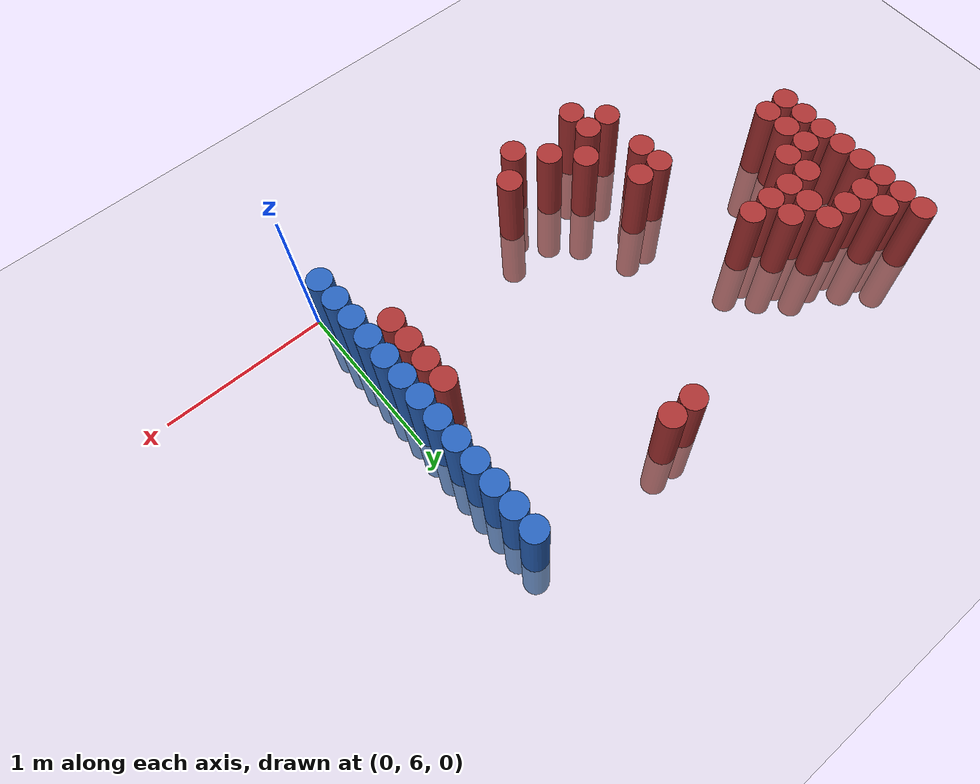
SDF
<sdf version="1.6">
 <world name="default">
  <model name="ground_plane">
   <static>1</static>
   <link name="link">
    <collision name="collision">
     <geometry><plane><normal>0 0 1</normal><size>100 100</size></plane></geometry>
     <surface><friction><ode><mu>100</mu><mu2>50</mu2></ode></friction></surface>
    </collision>
    <visual name="visual">
     <cast_shadows>0</cast_shadows>
     <geometry><plane><normal>0 0 1</normal><size>100 100</size></plane></geometry>
     <material>
      <script><uri>file://media/materials/scripts/gazebo.material</uri><name>Gazebo/Grey</name></script>
     </material>
    </visual>
   </link>
  </model>
  <model name="unit_cylinder_236">
   <static>1</static>
   <pose>-2.925000 6.825000 0.000000 0.000000 0.000000 0.000000</pose>
   <link name="link">
    <inertial>
     <mass>1</mass>
     <inertia><ixx>0.145833</ixx><ixy>0</ixy><ixz>0</ixz><iyy>0.145833</iyy><iyz>0</iyz><izz>0.125</izz></inertia>
    </inertial>
    <collision name="collision">
     <geometry><cylinder><radius>0.075000</radius><length>1</length></cylinder></geometry>
    </collision>
    <visual name="visual">
     <geometry><cylinder><radius>0.075000</radius><length>1</length></cylinder></geometry>
     <material>
      <ambient>0.648000 0.192000 0.192000 1</ambient>
      <diffuse>0.648000 0.192000 0.192000 1</diffuse>
     </material>
     <material>
      <script><name>Gazebo/Grey</name><uri>file://media/materials/scripts/gazebo.material</uri></script>
     </material>
    </visual>
   </link>
  </model>
  <model name="unit_cylinder_237">
   <static>1</static>
   <pose>-2.925000 6.975000 0.000000 0.000000 0.000000 0.000000</pose>
   <link name="link">
    <inertial>
     <mass>1</mass>
     <inertia><ixx>0.145833</ixx><ixy>0</ixy><ixz>0</ixz><iyy>0.145833</iyy><iyz>0</iyz><izz>0.125</izz></inertia>
    </inertial>
    <collision name="collision">
     <geometry><cylinder><radius>0.075000</radius><length>1</length></cylinder></geometry>
    </collision>
    <visual name="visual">
     <geometry><cylinder><radius>0.075000</radius><length>1</length></cylinder></geometry>
     <material>
      <ambient>0.648000 0.192000 0.192000 1</ambient>
      <diffuse>0.648000 0.192000 0.192000 1</diffuse>
     </material>
     <material>
      <script><name>Gazebo/Grey</name><uri>file://media/materials/scripts/gazebo.material</uri></script>
     </material>
    </visual>
   </link>
  </model>
  <model name="unit_cylinder_238">
   <static>1</static>
   <pose>-2.925000 7.125000 0.000000 0.000000 0.000000 0.000000</pose>
   <link name="link">
    <inertial>
     <mass>1</mass>
     <inertia><ixx>0.145833</ixx><ixy>0</ixy><ixz>0</ixz><iyy>0.145833</iyy><iyz>0</iyz><izz>0.125</izz></inertia>
    </inertial>
    <collision name="collision">
     <geometry><cylinder><radius>0.075000</radius><length>1</length></cylinder></geometry>
    </collision>
    <visual name="visual">
     <geometry><cylinder><radius>0.075000</radius><length>1</length></cylinder></geometry>
     <material>
      <ambient>0.648000 0.192000 0.192000 1</ambient>
      <diffuse>0.648000 0.192000 0.192000 1</diffuse>
     </material>
     <material>
      <script><name>Gazebo/Grey</name><uri>file://media/materials/scripts/gazebo.material</uri></script>
     </material>
    </visual>
   </link>
  </model>
  <model name="unit_cylinder_239">
   <static>1</static>
   <pose>-2.925000 7.275000 0.000000 0.000000 0.000000 0.000000</pose>
   <link name="link">
    <inertial>
     <mass>1</mass>
     <inertia><ixx>0.145833</ixx><ixy>0</ixy><ixz>0</ixz><iyy>0.145833</iyy><iyz>0</iyz><izz>0.125</izz></inertia>
    </inertial>
    <collision name="collision">
     <geometry><cylinder><radius>0.075000</radius><length>1</length></cylinder></geometry>
    </collision>
    <visual name="visual">
     <geometry><cylinder><radius>0.075000</radius><length>1</length></cylinder></geometry>
     <material>
      <ambient>0.648000 0.192000 0.192000 1</ambient>
      <diffuse>0.648000 0.192000 0.192000 1</diffuse>
     </material>
     <material>
      <script><name>Gazebo/Grey</name><uri>file://media/materials/scripts/gazebo.material</uri></script>
     </material>
    </visual>
   </link>
  </model>
  <model name="unit_cylinder_240">
   <static>1</static>
   <pose>-2.925000 7.425000 0.000000 0.000000 0.000000 0.000000</pose>
   <link name="link">
    <inertial>
     <mass>1</mass>
     <inertia><ixx>0.145833</ixx><ixy>0</ixy><ixz>0</ixz><iyy>0.145833</iyy><iyz>0</iyz><izz>0.125</izz></inertia>
    </inertial>
    <collision name="collision">
     <geometry><cylinder><radius>0.075000</radius><length>1</length></cylinder></geometry>
    </collision>
    <visual name="visual">
     <geometry><cylinder><radius>0.075000</radius><length>1</length></cylinder></geometry>
     <material>
      <ambient>0.648000 0.192000 0.192000 1</ambient>
      <diffuse>0.648000 0.192000 0.192000 1</diffuse>
     </material>
     <material>
      <script><name>Gazebo/Grey</name><uri>file://media/materials/scripts/gazebo.material</uri></script>
     </material>
    </visual>
   </link>
  </model>
  <model name="unit_cylinder_241">
   <static>1</static>
   <pose>-2.925000 7.575000 0.000000 0.000000 0.000000 0.000000</pose>
   <link name="link">
    <inertial>
     <mass>1</mass>
     <inertia><ixx>0.145833</ixx><ixy>0</ixy><ixz>0</ixz><iyy>0.145833</iyy><iyz>0</iyz><izz>0.125</izz></inertia>
    </inertial>
    <collision name="collision">
     <geometry><cylinder><radius>0.075000</radius><length>1</length></cylinder></geometry>
    </collision>
    <visual name="visual">
     <geometry><cylinder><radius>0.075000</radius><length>1</length></cylinder></geometry>
     <material>
      <ambient>0.648000 0.192000 0.192000 1</ambient>
      <diffuse>0.648000 0.192000 0.192000 1</diffuse>
     </material>
     <material>
      <script><name>Gazebo/Grey</name><uri>file://media/materials/scripts/gazebo.material</uri></script>
     </material>
    </visual>
   </link>
  </model>
  <model name="unit_cylinder_242">
   <static>1</static>
   <pose>-2.925000 7.725000 0.000000 0.000000 0.000000 0.000000</pose>
   <link name="link">
    <inertial>
     <mass>1</mass>
     <inertia><ixx>0.145833</ixx><ixy>0</ixy><ixz>0</ixz><iyy>0.145833</iyy><iyz>0</iyz><izz>0.125</izz></inertia>
    </inertial>
    <collision name="collision">
     <geometry><cylinder><radius>0.075000</radius><length>1</length></cylinder></geometry>
    </collision>
    <visual name="visual">
     <geometry><cylinder><radius>0.075000</radius><length>1</length></cylinder></geometry>
     <material>
      <ambient>0.648000 0.192000 0.192000 1</ambient>
      <diffuse>0.648000 0.192000 0.192000 1</diffuse>
     </material>
     <material>
      <script><name>Gazebo/Grey</name><uri>file://media/materials/scripts/gazebo.material</uri></script>
     </material>
    </visual>
   </link>
  </model>
  <model name="unit_cylinder_243">
   <static>1</static>
   <pose>-2.925000 7.875000 0.000000 0.000000 0.000000 0.000000</pose>
   <link name="link">
    <inertial>
     <mass>1</mass>
     <inertia><ixx>0.145833</ixx><ixy>0</ixy><ixz>0</ixz><iyy>0.145833</iyy><iyz>0</iyz><izz>0.125</izz></inertia>
    </inertial>
    <collision name="collision">
     <geometry><cylinder><radius>0.075000</radius><length>1</length></cylinder></geometry>
    </collision>
    <visual name="visual">
     <geometry><cylinder><radius>0.075000</radius><length>1</length></cylinder></geometry>
     <material>
      <ambient>0.648000 0.192000 0.192000 1</ambient>
      <diffuse>0.648000 0.192000 0.192000 1</diffuse>
     </material>
     <material>
      <script><name>Gazebo/Grey</name><uri>file://media/materials/scripts/gazebo.material</uri></script>
     </material>
    </visual>
   </link>
  </model>
  <model name="unit_cylinder_249">
   <static>1</static>
   <pose>-2.775000 6.825000 0.000000 0.000000 0.000000 0.000000</pose>
   <link name="link">
    <inertial>
     <mass>1</mass>
     <inertia><ixx>0.145833</ixx><ixy>0</ixy><ixz>0</ixz><iyy>0.145833</iyy><iyz>0</iyz><izz>0.125</izz></inertia>
    </inertial>
    <collision name="collision">
     <geometry><cylinder><radius>0.075000</radius><length>1</length></cylinder></geometry>
    </collision>
    <visual name="visual">
     <geometry><cylinder><radius>0.075000</radius><length>1</length></cylinder></geometry>
     <material>
      <ambient>0.648000 0.192000 0.192000 1</ambient>
      <diffuse>0.648000 0.192000 0.192000 1</diffuse>
     </material>
     <material>
      <script><name>Gazebo/Grey</name><uri>file://media/materials/scripts/gazebo.material</uri></script>
     </material>
    </visual>
   </link>
  </model>
  <model name="unit_cylinder_250">
   <static>1</static>
   <pose>-2.775000 6.975000 0.000000 0.000000 0.000000 0.000000</pose>
   <link name="link">
    <inertial>
     <mass>1</mass>
     <inertia><ixx>0.145833</ixx><ixy>0</ixy><ixz>0</ixz><iyy>0.145833</iyy><iyz>0</iyz><izz>0.125</izz></inertia>
    </inertial>
    <collision name="collision">
     <geometry><cylinder><radius>0.075000</radius><length>1</length></cylinder></geometry>
    </collision>
    <visual name="visual">
     <geometry><cylinder><radius>0.075000</radius><length>1</length></cylinder></geometry>
     <material>
      <ambient>0.648000 0.192000 0.192000 1</ambient>
      <diffuse>0.648000 0.192000 0.192000 1</diffuse>
     </material>
     <material>
      <script><name>Gazebo/Grey</name><uri>file://media/materials/scripts/gazebo.material</uri></script>
     </material>
    </visual>
   </link>
  </model>
  <model name="unit_cylinder_251">
   <static>1</static>
   <pose>-2.775000 7.125000 0.000000 0.000000 0.000000 0.000000</pose>
   <link name="link">
    <inertial>
     <mass>1</mass>
     <inertia><ixx>0.145833</ixx><ixy>0</ixy><ixz>0</ixz><iyy>0.145833</iyy><iyz>0</iyz><izz>0.125</izz></inertia>
    </inertial>
    <collision name="collision">
     <geometry><cylinder><radius>0.075000</radius><length>1</length></cylinder></geometry>
    </collision>
    <visual name="visual">
     <geometry><cylinder><radius>0.075000</radius><length>1</length></cylinder></geometry>
     <material>
      <ambient>0.648000 0.192000 0.192000 1</ambient>
      <diffuse>0.648000 0.192000 0.192000 1</diffuse>
     </material>
     <material>
      <script><name>Gazebo/Grey</name><uri>file://media/materials/scripts/gazebo.material</uri></script>
     </material>
    </visual>
   </link>
  </model>
  <model name="unit_cylinder_252">
   <static>1</static>
   <pose>-2.775000 7.575000 0.000000 0.000000 0.000000 0.000000</pose>
   <link name="link">
    <inertial>
     <mass>1</mass>
     <inertia><ixx>0.145833</ixx><ixy>0</ixy><ixz>0</ixz><iyy>0.145833</iyy><iyz>0</iyz><izz>0.125</izz></inertia>
    </inertial>
    <collision name="collision">
     <geometry><cylinder><radius>0.075000</radius><length>1</length></cylinder></geometry>
    </collision>
    <visual name="visual">
     <geometry><cylinder><radius>0.075000</radius><length>1</length></cylinder></geometry>
     <material>
      <ambient>0.648000 0.192000 0.192000 1</ambient>
      <diffuse>0.648000 0.192000 0.192000 1</diffuse>
     </material>
     <material>
      <script><name>Gazebo/Grey</name><uri>file://media/materials/scripts/gazebo.material</uri></script>
     </material>
    </visual>
   </link>
  </model>
  <model name="unit_cylinder_253">
   <static>1</static>
   <pose>-2.775000 7.725000 0.000000 0.000000 0.000000 0.000000</pose>
   <link name="link">
    <inertial>
     <mass>1</mass>
     <inertia><ixx>0.145833</ixx><ixy>0</ixy><ixz>0</ixz><iyy>0.145833</iyy><iyz>0</iyz><izz>0.125</izz></inertia>
    </inertial>
    <collision name="collision">
     <geometry><cylinder><radius>0.075000</radius><length>1</length></cylinder></geometry>
    </collision>
    <visual name="visual">
     <geometry><cylinder><radius>0.075000</radius><length>1</length></cylinder></geometry>
     <material>
      <ambient>0.648000 0.192000 0.192000 1</ambient>
      <diffuse>0.648000 0.192000 0.192000 1</diffuse>
     </material>
     <material>
      <script><name>Gazebo/Grey</name><uri>file://media/materials/scripts/gazebo.material</uri></script>
     </material>
    </visual>
   </link>
  </model>
  <model name="unit_cylinder_257">
   <static>1</static>
   <pose>-2.625000 7.125000 0.000000 0.000000 0.000000 0.000000</pose>
   <link name="link">
    <inertial>
     <mass>1</mass>
     <inertia><ixx>0.145833</ixx><ixy>0</ixy><ixz>0</ixz><iyy>0.145833</iyy><iyz>0</iyz><izz>0.125</izz></inertia>
    </inertial>
    <collision name="collision">
     <geometry><cylinder><radius>0.075000</radius><length>1</length></cylinder></geometry>
    </collision>
    <visual name="visual">
     <geometry><cylinder><radius>0.075000</radius><length>1</length></cylinder></geometry>
     <material>
      <ambient>0.648000 0.192000 0.192000 1</ambient>
      <diffuse>0.648000 0.192000 0.192000 1</diffuse>
     </material>
     <material>
      <script><name>Gazebo/Grey</name><uri>file://media/materials/scripts/gazebo.material</uri></script>
     </material>
    </visual>
   </link>
  </model>
  <model name="unit_cylinder_258">
   <static>1</static>
   <pose>-2.625000 7.275000 0.000000 0.000000 0.000000 0.000000</pose>
   <link name="link">
    <inertial>
     <mass>1</mass>
     <inertia><ixx>0.145833</ixx><ixy>0</ixy><ixz>0</ixz><iyy>0.145833</iyy><iyz>0</iyz><izz>0.125</izz></inertia>
    </inertial>
    <collision name="collision">
     <geometry><cylinder><radius>0.075000</radius><length>1</length></cylinder></geometry>
    </collision>
    <visual name="visual">
     <geometry><cylinder><radius>0.075000</radius><length>1</length></cylinder></geometry>
     <material>
      <ambient>0.648000 0.192000 0.192000 1</ambient>
      <diffuse>0.648000 0.192000 0.192000 1</diffuse>
     </material>
     <material>
      <script><name>Gazebo/Grey</name><uri>file://media/materials/scripts/gazebo.material</uri></script>
     </material>
    </visual>
   </link>
  </model>
  <model name="unit_cylinder_259">
   <static>1</static>
   <pose>-2.625000 7.575000 0.000000 0.000000 0.000000 0.000000</pose>
   <link name="link">
    <inertial>
     <mass>1</mass>
     <inertia><ixx>0.145833</ixx><ixy>0</ixy><ixz>0</ixz><iyy>0.145833</iyy><iyz>0</iyz><izz>0.125</izz></inertia>
    </inertial>
    <collision name="collision">
     <geometry><cylinder><radius>0.075000</radius><length>1</length></cylinder></geometry>
    </collision>
    <visual name="visual">
     <geometry><cylinder><radius>0.075000</radius><length>1</length></cylinder></geometry>
     <material>
      <ambient>0.648000 0.192000 0.192000 1</ambient>
      <diffuse>0.648000 0.192000 0.192000 1</diffuse>
     </material>
     <material>
      <script><name>Gazebo/Grey</name><uri>file://media/materials/scripts/gazebo.material</uri></script>
     </material>
    </visual>
   </link>
  </model>
  <model name="unit_cylinder_263">
   <static>1</static>
   <pose>-2.475000 7.275000 0.000000 0.000000 0.000000 0.000000</pose>
   <link name="link">
    <inertial>
     <mass>1</mass>
     <inertia><ixx>0.145833</ixx><ixy>0</ixy><ixz>0</ixz><iyy>0.145833</iyy><iyz>0</iyz><izz>0.125</izz></inertia>
    </inertial>
    <collision name="collision">
     <geometry><cylinder><radius>0.075000</radius><length>1</length></cylinder></geometry>
    </collision>
    <visual name="visual">
     <geometry><cylinder><radius>0.075000</radius><length>1</length></cylinder></geometry>
     <material>
      <ambient>0.648000 0.192000 0.192000 1</ambient>
      <diffuse>0.648000 0.192000 0.192000 1</diffuse>
     </material>
     <material>
      <script><name>Gazebo/Grey</name><uri>file://media/materials/scripts/gazebo.material</uri></script>
     </material>
    </visual>
   </link>
  </model>
  <model name="unit_cylinder_264">
   <static>1</static>
   <pose>-2.475000 7.425000 0.000000 0.000000 0.000000 0.000000</pose>
   <link name="link">
    <inertial>
     <mass>1</mass>
     <inertia><ixx>0.145833</ixx><ixy>0</ixy><ixz>0</ixz><iyy>0.145833</iyy><iyz>0</iyz><izz>0.125</izz></inertia>
    </inertial>
    <collision name="collision">
     <geometry><cylinder><radius>0.075000</radius><length>1</length></cylinder></geometry>
    </collision>
    <visual name="visual">
     <geometry><cylinder><radius>0.075000</radius><length>1</length></cylinder></geometry>
     <material>
      <ambient>0.648000 0.192000 0.192000 1</ambient>
      <diffuse>0.648000 0.192000 0.192000 1</diffuse>
     </material>
     <material>
      <script><name>Gazebo/Grey</name><uri>file://media/materials/scripts/gazebo.material</uri></script>
     </material>
    </visual>
   </link>
  </model>
  <model name="unit_cylinder_265">
   <static>1</static>
   <pose>-2.475000 7.575000 0.000000 0.000000 0.000000 0.000000</pose>
   <link name="link">
    <inertial>
     <mass>1</mass>
     <inertia><ixx>0.145833</ixx><ixy>0</ixy><ixz>0</ixz><iyy>0.145833</iyy><iyz>0</iyz><izz>0.125</izz></inertia>
    </inertial>
    <collision name="collision">
     <geometry><cylinder><radius>0.075000</radius><length>1</length></cylinder></geometry>
    </collision>
    <visual name="visual">
     <geometry><cylinder><radius>0.075000</radius><length>1</length></cylinder></geometry>
     <material>
      <ambient>0.648000 0.192000 0.192000 1</ambient>
      <diffuse>0.648000 0.192000 0.192000 1</diffuse>
     </material>
     <material>
      <script><name>Gazebo/Grey</name><uri>file://media/materials/scripts/gazebo.material</uri></script>
     </material>
    </visual>
   </link>
  </model>
  <model name="unit_cylinder_268">
   <static>1</static>
   <pose>-2.325000 7.275000 0.000000 0.000000 0.000000 0.000000</pose>
   <link name="link">
    <inertial>
     <mass>1</mass>
     <inertia><ixx>0.145833</ixx><ixy>0</ixy><ixz>0</ixz><iyy>0.145833</iyy><iyz>0</iyz><izz>0.125</izz></inertia>
    </inertial>
    <collision name="collision">
     <geometry><cylinder><radius>0.075000</radius><length>1</length></cylinder></geometry>
    </collision>
    <visual name="visual">
     <geometry><cylinder><radius>0.075000</radius><length>1</length></cylinder></geometry>
     <material>
      <ambient>0.648000 0.192000 0.192000 1</ambient>
      <diffuse>0.648000 0.192000 0.192000 1</diffuse>
     </material>
     <material>
      <script><name>Gazebo/Grey</name><uri>file://media/materials/scripts/gazebo.material</uri></script>
     </material>
    </visual>
   </link>
  </model>
  <model name="unit_cylinder_269">
   <static>1</static>
   <pose>-2.325000 7.425000 0.000000 0.000000 0.000000 0.000000</pose>
   <link name="link">
    <inertial>
     <mass>1</mass>
     <inertia><ixx>0.145833</ixx><ixy>0</ixy><ixz>0</ixz><iyy>0.145833</iyy><iyz>0</iyz><izz>0.125</izz></inertia>
    </inertial>
    <collision name="collision">
     <geometry><cylinder><radius>0.075000</radius><length>1</length></cylinder></geometry>
    </collision>
    <visual name="visual">
     <geometry><cylinder><radius>0.075000</radius><length>1</length></cylinder></geometry>
     <material>
      <ambient>0.648000 0.192000 0.192000 1</ambient>
      <diffuse>0.648000 0.192000 0.192000 1</diffuse>
     </material>
     <material>
      <script><name>Gazebo/Grey</name><uri>file://media/materials/scripts/gazebo.material</uri></script>
     </material>
    </visual>
   </link>
  </model>
  <model name="unit_cylinder_273">
   <static>1</static>
   <pose>-2.175000 7.275000 0.000000 0.000000 0.000000 0.000000</pose>
   <link name="link">
    <inertial>
     <mass>1</mass>
     <inertia><ixx>0.145833</ixx><ixy>0</ixy><ixz>0</ixz><iyy>0.145833</iyy><iyz>0</iyz><izz>0.125</izz></inertia>
    </inertial>
    <collision name="collision">
     <geometry><cylinder><radius>0.075000</radius><length>1</length></cylinder></geometry>
    </collision>
    <visual name="visual">
     <geometry><cylinder><radius>0.075000</radius><length>1</length></cylinder></geometry>
     <material>
      <ambient>0.648000 0.192000 0.192000 1</ambient>
      <diffuse>0.648000 0.192000 0.192000 1</diffuse>
     </material>
     <material>
      <script><name>Gazebo/Grey</name><uri>file://media/materials/scripts/gazebo.material</uri></script>
     </material>
    </visual>
   </link>
  </model>
  <model name="unit_cylinder_277">
   <static>1</static>
   <pose>-2.025000 6.225000 0.000000 0.000000 0.000000 0.000000</pose>
   <link name="link">
    <inertial>
     <mass>1</mass>
     <inertia><ixx>0.145833</ixx><ixy>0</ixy><ixz>0</ixz><iyy>0.145833</iyy><iyz>0</iyz><izz>0.125</izz></inertia>
    </inertial>
    <collision name="collision">
     <geometry><cylinder><radius>0.075000</radius><length>1</length></cylinder></geometry>
    </collision>
    <visual name="visual">
     <geometry><cylinder><radius>0.075000</radius><length>1</length></cylinder></geometry>
     <material>
      <ambient>0.648000 0.192000 0.192000 1</ambient>
      <diffuse>0.648000 0.192000 0.192000 1</diffuse>
     </material>
     <material>
      <script><name>Gazebo/Grey</name><uri>file://media/materials/scripts/gazebo.material</uri></script>
     </material>
    </visual>
   </link>
  </model>
  <model name="unit_cylinder_278">
   <static>1</static>
   <pose>-2.025000 6.525000 0.000000 0.000000 0.000000 0.000000</pose>
   <link name="link">
    <inertial>
     <mass>1</mass>
     <inertia><ixx>0.145833</ixx><ixy>0</ixy><ixz>0</ixz><iyy>0.145833</iyy><iyz>0</iyz><izz>0.125</izz></inertia>
    </inertial>
    <collision name="collision">
     <geometry><cylinder><radius>0.075000</radius><length>1</length></cylinder></geometry>
    </collision>
    <visual name="visual">
     <geometry><cylinder><radius>0.075000</radius><length>1</length></cylinder></geometry>
     <material>
      <ambient>0.648000 0.192000 0.192000 1</ambient>
      <diffuse>0.648000 0.192000 0.192000 1</diffuse>
     </material>
     <material>
      <script><name>Gazebo/Grey</name><uri>file://media/materials/scripts/gazebo.material</uri></script>
     </material>
    </visual>
   </link>
  </model>
  <model name="unit_cylinder_279">
   <static>1</static>
   <pose>-2.025000 6.675000 0.000000 0.000000 0.000000 0.000000</pose>
   <link name="link">
    <inertial>
     <mass>1</mass>
     <inertia><ixx>0.145833</ixx><ixy>0</ixy><ixz>0</ixz><iyy>0.145833</iyy><iyz>0</iyz><izz>0.125</izz></inertia>
    </inertial>
    <collision name="collision">
     <geometry><cylinder><radius>0.075000</radius><length>1</length></cylinder></geometry>
    </collision>
    <visual name="visual">
     <geometry><cylinder><radius>0.075000</radius><length>1</length></cylinder></geometry>
     <material>
      <ambient>0.648000 0.192000 0.192000 1</ambient>
      <diffuse>0.648000 0.192000 0.192000 1</diffuse>
     </material>
     <material>
      <script><name>Gazebo/Grey</name><uri>file://media/materials/scripts/gazebo.material</uri></script>
     </material>
    </visual>
   </link>
  </model>
  <model name="unit_cylinder_283">
   <static>1</static>
   <pose>-1.875000 6.075000 0.000000 0.000000 0.000000 0.000000</pose>
   <link name="link">
    <inertial>
     <mass>1</mass>
     <inertia><ixx>0.145833</ixx><ixy>0</ixy><ixz>0</ixz><iyy>0.145833</iyy><iyz>0</iyz><izz>0.125</izz></inertia>
    </inertial>
    <collision name="collision">
     <geometry><cylinder><radius>0.075000</radius><length>1</length></cylinder></geometry>
    </collision>
    <visual name="visual">
     <geometry><cylinder><radius>0.075000</radius><length>1</length></cylinder></geometry>
     <material>
      <ambient>0.648000 0.192000 0.192000 1</ambient>
      <diffuse>0.648000 0.192000 0.192000 1</diffuse>
     </material>
     <material>
      <script><name>Gazebo/Grey</name><uri>file://media/materials/scripts/gazebo.material</uri></script>
     </material>
    </visual>
   </link>
  </model>
  <model name="unit_cylinder_284">
   <static>1</static>
   <pose>-1.875000 6.225000 0.000000 0.000000 0.000000 0.000000</pose>
   <link name="link">
    <inertial>
     <mass>1</mass>
     <inertia><ixx>0.145833</ixx><ixy>0</ixy><ixz>0</ixz><iyy>0.145833</iyy><iyz>0</iyz><izz>0.125</izz></inertia>
    </inertial>
    <collision name="collision">
     <geometry><cylinder><radius>0.075000</radius><length>1</length></cylinder></geometry>
    </collision>
    <visual name="visual">
     <geometry><cylinder><radius>0.075000</radius><length>1</length></cylinder></geometry>
     <material>
      <ambient>0.648000 0.192000 0.192000 1</ambient>
      <diffuse>0.648000 0.192000 0.192000 1</diffuse>
     </material>
     <material>
      <script><name>Gazebo/Grey</name><uri>file://media/materials/scripts/gazebo.material</uri></script>
     </material>
    </visual>
   </link>
  </model>
  <model name="unit_cylinder_285">
   <static>1</static>
   <pose>-1.875000 6.675000 0.000000 0.000000 0.000000 0.000000</pose>
   <link name="link">
    <inertial>
     <mass>1</mass>
     <inertia><ixx>0.145833</ixx><ixy>0</ixy><ixz>0</ixz><iyy>0.145833</iyy><iyz>0</iyz><izz>0.125</izz></inertia>
    </inertial>
    <collision name="collision">
     <geometry><cylinder><radius>0.075000</radius><length>1</length></cylinder></geometry>
    </collision>
    <visual name="visual">
     <geometry><cylinder><radius>0.075000</radius><length>1</length></cylinder></geometry>
     <material>
      <ambient>0.648000 0.192000 0.192000 1</ambient>
      <diffuse>0.648000 0.192000 0.192000 1</diffuse>
     </material>
     <material>
      <script><name>Gazebo/Grey</name><uri>file://media/materials/scripts/gazebo.material</uri></script>
     </material>
    </visual>
   </link>
  </model>
  <model name="unit_cylinder_292">
   <static>1</static>
   <pose>-1.725000 6.375000 0.000000 0.000000 0.000000 0.000000</pose>
   <link name="link">
    <inertial>
     <mass>1</mass>
     <inertia><ixx>0.145833</ixx><ixy>0</ixy><ixz>0</ixz><iyy>0.145833</iyy><iyz>0</iyz><izz>0.125</izz></inertia>
    </inertial>
    <collision name="collision">
     <geometry><cylinder><radius>0.075000</radius><length>1</length></cylinder></geometry>
    </collision>
    <visual name="visual">
     <geometry><cylinder><radius>0.075000</radius><length>1</length></cylinder></geometry>
     <material>
      <ambient>0.648000 0.192000 0.192000 1</ambient>
      <diffuse>0.648000 0.192000 0.192000 1</diffuse>
     </material>
     <material>
      <script><name>Gazebo/Grey</name><uri>file://media/materials/scripts/gazebo.material</uri></script>
     </material>
    </visual>
   </link>
  </model>
  <model name="unit_cylinder_297">
   <static>1</static>
   <pose>-1.575000 6.225000 0.000000 0.000000 0.000000 0.000000</pose>
   <link name="link">
    <inertial>
     <mass>1</mass>
     <inertia><ixx>0.145833</ixx><ixy>0</ixy><ixz>0</ixz><iyy>0.145833</iyy><iyz>0</iyz><izz>0.125</izz></inertia>
    </inertial>
    <collision name="collision">
     <geometry><cylinder><radius>0.075000</radius><length>1</length></cylinder></geometry>
    </collision>
    <visual name="visual">
     <geometry><cylinder><radius>0.075000</radius><length>1</length></cylinder></geometry>
     <material>
      <ambient>0.648000 0.192000 0.192000 1</ambient>
      <diffuse>0.648000 0.192000 0.192000 1</diffuse>
     </material>
     <material>
      <script><name>Gazebo/Grey</name><uri>file://media/materials/scripts/gazebo.material</uri></script>
     </material>
    </visual>
   </link>
  </model>
  <model name="unit_cylinder_303">
   <static>1</static>
   <pose>-1.425000 6.075000 0.000000 0.000000 0.000000 0.000000</pose>
   <link name="link">
    <inertial>
     <mass>1</mass>
     <inertia><ixx>0.145833</ixx><ixy>0</ixy><ixz>0</ixz><iyy>0.145833</iyy><iyz>0</iyz><izz>0.125</izz></inertia>
    </inertial>
    <collision name="collision">
     <geometry><cylinder><radius>0.075000</radius><length>1</length></cylinder></geometry>
    </collision>
    <visual name="visual">
     <geometry><cylinder><radius>0.075000</radius><length>1</length></cylinder></geometry>
     <material>
      <ambient>0.648000 0.192000 0.192000 1</ambient>
      <diffuse>0.648000 0.192000 0.192000 1</diffuse>
     </material>
     <material>
      <script><name>Gazebo/Grey</name><uri>file://media/materials/scripts/gazebo.material</uri></script>
     </material>
    </visual>
   </link>
  </model>
  <model name="unit_cylinder_309">
   <static>1</static>
   <pose>-1.275000 6.225000 0.000000 0.000000 0.000000 0.000000</pose>
   <link name="link">
    <inertial>
     <mass>1</mass>
     <inertia><ixx>0.145833</ixx><ixy>0</ixy><ixz>0</ixz><iyy>0.145833</iyy><iyz>0</iyz><izz>0.125</izz></inertia>
    </inertial>
    <collision name="collision">
     <geometry><cylinder><radius>0.075000</radius><length>1</length></cylinder></geometry>
    </collision>
    <visual name="visual">
     <geometry><cylinder><radius>0.075000</radius><length>1</length></cylinder></geometry>
     <material>
      <ambient>0.648000 0.192000 0.192000 1</ambient>
      <diffuse>0.648000 0.192000 0.192000 1</diffuse>
     </material>
     <material>
      <script><name>Gazebo/Grey</name><uri>file://media/materials/scripts/gazebo.material</uri></script>
     </material>
    </visual>
   </link>
  </model>
  <model name="unit_cylinder_312">
   <static>1</static>
   <pose>-1.125000 7.875000 0.000000 0.000000 0.000000 0.000000</pose>
   <link name="link">
    <inertial>
     <mass>1</mass>
     <inertia><ixx>0.145833</ixx><ixy>0</ixy><ixz>0</ixz><iyy>0.145833</iyy><iyz>0</iyz><izz>0.125</izz></inertia>
    </inertial>
    <collision name="collision">
     <geometry><cylinder><radius>0.075000</radius><length>1</length></cylinder></geometry>
    </collision>
    <visual name="visual">
     <geometry><cylinder><radius>0.075000</radius><length>1</length></cylinder></geometry>
     <material>
      <ambient>0.648000 0.192000 0.192000 1</ambient>
      <diffuse>0.648000 0.192000 0.192000 1</diffuse>
     </material>
     <material>
      <script><name>Gazebo/Grey</name><uri>file://media/materials/scripts/gazebo.material</uri></script>
     </material>
    </visual>
   </link>
  </model>
  <model name="unit_cylinder_314">
   <static>1</static>
   <pose>-0.975000 7.875000 0.000000 0.000000 0.000000 0.000000</pose>
   <link name="link">
    <inertial>
     <mass>1</mass>
     <inertia><ixx>0.145833</ixx><ixy>0</ixy><ixz>0</ixz><iyy>0.145833</iyy><iyz>0</iyz><izz>0.125</izz></inertia>
    </inertial>
    <collision name="collision">
     <geometry><cylinder><radius>0.075000</radius><length>1</length></cylinder></geometry>
    </collision>
    <visual name="visual">
     <geometry><cylinder><radius>0.075000</radius><length>1</length></cylinder></geometry>
     <material>
      <ambient>0.648000 0.192000 0.192000 1</ambient>
      <diffuse>0.648000 0.192000 0.192000 1</diffuse>
     </material>
     <material>
      <script><name>Gazebo/Grey</name><uri>file://media/materials/scripts/gazebo.material</uri></script>
     </material>
    </visual>
   </link>
  </model>
  <model name="unit_cylinder_320">
   <static>1</static>
   <pose>-0.225000 6.525000 0.000000 0.000000 0.000000 0.000000</pose>
   <link name="link">
    <inertial>
     <mass>1</mass>
     <inertia><ixx>0.145833</ixx><ixy>0</ixy><ixz>0</ixz><iyy>0.145833</iyy><iyz>0</iyz><izz>0.125</izz></inertia>
    </inertial>
    <collision name="collision">
     <geometry><cylinder><radius>0.075000</radius><length>1</length></cylinder></geometry>
    </collision>
    <visual name="visual">
     <geometry><cylinder><radius>0.075000</radius><length>1</length></cylinder></geometry>
     <material>
      <ambient>0.648000 0.192000 0.192000 1</ambient>
      <diffuse>0.648000 0.192000 0.192000 1</diffuse>
     </material>
     <material>
      <script><name>Gazebo/Grey</name><uri>file://media/materials/scripts/gazebo.material</uri></script>
     </material>
    </visual>
   </link>
  </model>
  <model name="unit_cylinder_321">
   <static>1</static>
   <pose>-0.225000 6.675000 0.000000 0.000000 0.000000 0.000000</pose>
   <link name="link">
    <inertial>
     <mass>1</mass>
     <inertia><ixx>0.145833</ixx><ixy>0</ixy><ixz>0</ixz><iyy>0.145833</iyy><iyz>0</iyz><izz>0.125</izz></inertia>
    </inertial>
    <collision name="collision">
     <geometry><cylinder><radius>0.075000</radius><length>1</length></cylinder></geometry>
    </collision>
    <visual name="visual">
     <geometry><cylinder><radius>0.075000</radius><length>1</length></cylinder></geometry>
     <material>
      <ambient>0.648000 0.192000 0.192000 1</ambient>
      <diffuse>0.648000 0.192000 0.192000 1</diffuse>
     </material>
     <material>
      <script><name>Gazebo/Grey</name><uri>file://media/materials/scripts/gazebo.material</uri></script>
     </material>
    </visual>
   </link>
  </model>
  <model name="unit_cylinder_322">
   <static>1</static>
   <pose>-0.225000 6.825000 0.000000 0.000000 0.000000 0.000000</pose>
   <link name="link">
    <inertial>
     <mass>1</mass>
     <inertia><ixx>0.145833</ixx><ixy>0</ixy><ixz>0</ixz><iyy>0.145833</iyy><iyz>0</iyz><izz>0.125</izz></inertia>
    </inertial>
    <collision name="collision">
     <geometry><cylinder><radius>0.075000</radius><length>1</length></cylinder></geometry>
    </collision>
    <visual name="visual">
     <geometry><cylinder><radius>0.075000</radius><length>1</length></cylinder></geometry>
     <material>
      <ambient>0.648000 0.192000 0.192000 1</ambient>
      <diffuse>0.648000 0.192000 0.192000 1</diffuse>
     </material>
     <material>
      <script><name>Gazebo/Grey</name><uri>file://media/materials/scripts/gazebo.material</uri></script>
     </material>
    </visual>
   </link>
  </model>
  <model name="unit_cylinder_323">
   <static>1</static>
   <pose>-0.225000 6.975000 0.000000 0.000000 0.000000 0.000000</pose>
   <link name="link">
    <inertial>
     <mass>1</mass>
     <inertia><ixx>0.145833</ixx><ixy>0</ixy><ixz>0</ixz><iyy>0.145833</iyy><iyz>0</iyz><izz>0.125</izz></inertia>
    </inertial>
    <collision name="collision">
     <geometry><cylinder><radius>0.075000</radius><length>1</length></cylinder></geometry>
    </collision>
    <visual name="visual">
     <geometry><cylinder><radius>0.075000</radius><length>1</length></cylinder></geometry>
     <material>
      <ambient>0.648000 0.192000 0.192000 1</ambient>
      <diffuse>0.648000 0.192000 0.192000 1</diffuse>
     </material>
     <material>
      <script><name>Gazebo/Grey</name><uri>file://media/materials/scripts/gazebo.material</uri></script>
     </material>
    </visual>
   </link>
  </model>
  <model name="unit_cylinder_332">
   <static>1</static>
   <pose>-0.075000 6.075000 0.000000 0.000000 0.000000 0.000000</pose>
   <link name="link">
    <inertial>
     <mass>1</mass>
     <inertia><ixx>0.145833</ixx><ixy>0</ixy><ixz>0</ixz><iyy>0.145833</iyy><iyz>0</iyz><izz>0.125</izz></inertia>
    </inertial>
    <collision name="collision">
     <geometry><cylinder><radius>0.075000</radius><length>1</length></cylinder></geometry>
    </collision>
    <visual name="visual">
     <geometry><cylinder><radius>0.075000</radius><length>1</length></cylinder></geometry>
     <material>
      <ambient>0.152000 0.379000 0.720000 1</ambient>
      <diffuse>0.152000 0.379000 0.720000 1</diffuse>
     </material>
     <material>
      <script><name>Gazebo/Grey</name><uri>file://media/materials/scripts/gazebo.material</uri></script>
     </material>
    </visual>
   </link>
  </model>
  <model name="unit_cylinder_333">
   <static>1</static>
   <pose>-0.075000 6.225000 0.000000 0.000000 0.000000 0.000000</pose>
   <link name="link">
    <inertial>
     <mass>1</mass>
     <inertia><ixx>0.145833</ixx><ixy>0</ixy><ixz>0</ixz><iyy>0.145833</iyy><iyz>0</iyz><izz>0.125</izz></inertia>
    </inertial>
    <collision name="collision">
     <geometry><cylinder><radius>0.075000</radius><length>1</length></cylinder></geometry>
    </collision>
    <visual name="visual">
     <geometry><cylinder><radius>0.075000</radius><length>1</length></cylinder></geometry>
     <material>
      <ambient>0.152000 0.379000 0.720000 1</ambient>
      <diffuse>0.152000 0.379000 0.720000 1</diffuse>
     </material>
     <material>
      <script><name>Gazebo/Grey</name><uri>file://media/materials/scripts/gazebo.material</uri></script>
     </material>
    </visual>
   </link>
  </model>
  <model name="unit_cylinder_334">
   <static>1</static>
   <pose>-0.075000 6.375000 0.000000 0.000000 0.000000 0.000000</pose>
   <link name="link">
    <inertial>
     <mass>1</mass>
     <inertia><ixx>0.145833</ixx><ixy>0</ixy><ixz>0</ixz><iyy>0.145833</iyy><iyz>0</iyz><izz>0.125</izz></inertia>
    </inertial>
    <collision name="collision">
     <geometry><cylinder><radius>0.075000</radius><length>1</length></cylinder></geometry>
    </collision>
    <visual name="visual">
     <geometry><cylinder><radius>0.075000</radius><length>1</length></cylinder></geometry>
     <material>
      <ambient>0.152000 0.379000 0.720000 1</ambient>
      <diffuse>0.152000 0.379000 0.720000 1</diffuse>
     </material>
     <material>
      <script><name>Gazebo/Grey</name><uri>file://media/materials/scripts/gazebo.material</uri></script>
     </material>
    </visual>
   </link>
  </model>
  <model name="unit_cylinder_335">
   <static>1</static>
   <pose>-0.075000 6.525000 0.000000 0.000000 0.000000 0.000000</pose>
   <link name="link">
    <inertial>
     <mass>1</mass>
     <inertia><ixx>0.145833</ixx><ixy>0</ixy><ixz>0</ixz><iyy>0.145833</iyy><iyz>0</iyz><izz>0.125</izz></inertia>
    </inertial>
    <collision name="collision">
     <geometry><cylinder><radius>0.075000</radius><length>1</length></cylinder></geometry>
    </collision>
    <visual name="visual">
     <geometry><cylinder><radius>0.075000</radius><length>1</length></cylinder></geometry>
     <material>
      <ambient>0.152000 0.379000 0.720000 1</ambient>
      <diffuse>0.152000 0.379000 0.720000 1</diffuse>
     </material>
     <material>
      <script><name>Gazebo/Grey</name><uri>file://media/materials/scripts/gazebo.material</uri></script>
     </material>
    </visual>
   </link>
  </model>
  <model name="unit_cylinder_336">
   <static>1</static>
   <pose>-0.075000 6.675000 0.000000 0.000000 0.000000 0.000000</pose>
   <link name="link">
    <inertial>
     <mass>1</mass>
     <inertia><ixx>0.145833</ixx><ixy>0</ixy><ixz>0</ixz><iyy>0.145833</iyy><iyz>0</iyz><izz>0.125</izz></inertia>
    </inertial>
    <collision name="collision">
     <geometry><cylinder><radius>0.075000</radius><length>1</length></cylinder></geometry>
    </collision>
    <visual name="visual">
     <geometry><cylinder><radius>0.075000</radius><length>1</length></cylinder></geometry>
     <material>
      <ambient>0.152000 0.379000 0.720000 1</ambient>
      <diffuse>0.152000 0.379000 0.720000 1</diffuse>
     </material>
     <material>
      <script><name>Gazebo/Grey</name><uri>file://media/materials/scripts/gazebo.material</uri></script>
     </material>
    </visual>
   </link>
  </model>
  <model name="unit_cylinder_337">
   <static>1</static>
   <pose>-0.075000 6.825000 0.000000 0.000000 0.000000 0.000000</pose>
   <link name="link">
    <inertial>
     <mass>1</mass>
     <inertia><ixx>0.145833</ixx><ixy>0</ixy><ixz>0</ixz><iyy>0.145833</iyy><iyz>0</iyz><izz>0.125</izz></inertia>
    </inertial>
    <collision name="collision">
     <geometry><cylinder><radius>0.075000</radius><length>1</length></cylinder></geometry>
    </collision>
    <visual name="visual">
     <geometry><cylinder><radius>0.075000</radius><length>1</length></cylinder></geometry>
     <material>
      <ambient>0.152000 0.379000 0.720000 1</ambient>
      <diffuse>0.152000 0.379000 0.720000 1</diffuse>
     </material>
     <material>
      <script><name>Gazebo/Grey</name><uri>file://media/materials/scripts/gazebo.material</uri></script>
     </material>
    </visual>
   </link>
  </model>
  <model name="unit_cylinder_338">
   <static>1</static>
   <pose>-0.075000 6.975000 0.000000 0.000000 0.000000 0.000000</pose>
   <link name="link">
    <inertial>
     <mass>1</mass>
     <inertia><ixx>0.145833</ixx><ixy>0</ixy><ixz>0</ixz><iyy>0.145833</iyy><iyz>0</iyz><izz>0.125</izz></inertia>
    </inertial>
    <collision name="collision">
     <geometry><cylinder><radius>0.075000</radius><length>1</length></cylinder></geometry>
    </collision>
    <visual name="visual">
     <geometry><cylinder><radius>0.075000</radius><length>1</length></cylinder></geometry>
     <material>
      <ambient>0.152000 0.379000 0.720000 1</ambient>
      <diffuse>0.152000 0.379000 0.720000 1</diffuse>
     </material>
     <material>
      <script><name>Gazebo/Grey</name><uri>file://media/materials/scripts/gazebo.material</uri></script>
     </material>
    </visual>
   </link>
  </model>
  <model name="unit_cylinder_339">
   <static>1</static>
   <pose>-0.075000 7.125000 0.000000 0.000000 0.000000 0.000000</pose>
   <link name="link">
    <inertial>
     <mass>1</mass>
     <inertia><ixx>0.145833</ixx><ixy>0</ixy><ixz>0</ixz><iyy>0.145833</iyy><iyz>0</iyz><izz>0.125</izz></inertia>
    </inertial>
    <collision name="collision">
     <geometry><cylinder><radius>0.075000</radius><length>1</length></cylinder></geometry>
    </collision>
    <visual name="visual">
     <geometry><cylinder><radius>0.075000</radius><length>1</length></cylinder></geometry>
     <material>
      <ambient>0.152000 0.379000 0.720000 1</ambient>
      <diffuse>0.152000 0.379000 0.720000 1</diffuse>
     </material>
     <material>
      <script><name>Gazebo/Grey</name><uri>file://media/materials/scripts/gazebo.material</uri></script>
     </material>
    </visual>
   </link>
  </model>
  <model name="unit_cylinder_340">
   <static>1</static>
   <pose>-0.075000 7.275000 0.000000 0.000000 0.000000 0.000000</pose>
   <link name="link">
    <inertial>
     <mass>1</mass>
     <inertia><ixx>0.145833</ixx><ixy>0</ixy><ixz>0</ixz><iyy>0.145833</iyy><iyz>0</iyz><izz>0.125</izz></inertia>
    </inertial>
    <collision name="collision">
     <geometry><cylinder><radius>0.075000</radius><length>1</length></cylinder></geometry>
    </collision>
    <visual name="visual">
     <geometry><cylinder><radius>0.075000</radius><length>1</length></cylinder></geometry>
     <material>
      <ambient>0.152000 0.379000 0.720000 1</ambient>
      <diffuse>0.152000 0.379000 0.720000 1</diffuse>
     </material>
     <material>
      <script><name>Gazebo/Grey</name><uri>file://media/materials/scripts/gazebo.material</uri></script>
     </material>
    </visual>
   </link>
  </model>
  <model name="unit_cylinder_341">
   <static>1</static>
   <pose>-0.075000 7.425000 0.000000 0.000000 0.000000 0.000000</pose>
   <link name="link">
    <inertial>
     <mass>1</mass>
     <inertia><ixx>0.145833</ixx><ixy>0</ixy><ixz>0</ixz><iyy>0.145833</iyy><iyz>0</iyz><izz>0.125</izz></inertia>
    </inertial>
    <collision name="collision">
     <geometry><cylinder><radius>0.075000</radius><length>1</length></cylinder></geometry>
    </collision>
    <visual name="visual">
     <geometry><cylinder><radius>0.075000</radius><length>1</length></cylinder></geometry>
     <material>
      <ambient>0.152000 0.379000 0.720000 1</ambient>
      <diffuse>0.152000 0.379000 0.720000 1</diffuse>
     </material>
     <material>
      <script><name>Gazebo/Grey</name><uri>file://media/materials/scripts/gazebo.material</uri></script>
     </material>
    </visual>
   </link>
  </model>
  <model name="unit_cylinder_342">
   <static>1</static>
   <pose>-0.075000 7.575000 0.000000 0.000000 0.000000 0.000000</pose>
   <link name="link">
    <inertial>
     <mass>1</mass>
     <inertia><ixx>0.145833</ixx><ixy>0</ixy><ixz>0</ixz><iyy>0.145833</iyy><iyz>0</iyz><izz>0.125</izz></inertia>
    </inertial>
    <collision name="collision">
     <geometry><cylinder><radius>0.075000</radius><length>1</length></cylinder></geometry>
    </collision>
    <visual name="visual">
     <geometry><cylinder><radius>0.075000</radius><length>1</length></cylinder></geometry>
     <material>
      <ambient>0.152000 0.379000 0.720000 1</ambient>
      <diffuse>0.152000 0.379000 0.720000 1</diffuse>
     </material>
     <material>
      <script><name>Gazebo/Grey</name><uri>file://media/materials/scripts/gazebo.material</uri></script>
     </material>
    </visual>
   </link>
  </model>
  <model name="unit_cylinder_343">
   <static>1</static>
   <pose>-0.075000 7.725000 0.000000 0.000000 0.000000 0.000000</pose>
   <link name="link">
    <inertial>
     <mass>1</mass>
     <inertia><ixx>0.145833</ixx><ixy>0</ixy><ixz>0</ixz><iyy>0.145833</iyy><iyz>0</iyz><izz>0.125</izz></inertia>
    </inertial>
    <collision name="collision">
     <geometry><cylinder><radius>0.075000</radius><length>1</length></cylinder></geometry>
    </collision>
    <visual name="visual">
     <geometry><cylinder><radius>0.075000</radius><length>1</length></cylinder></geometry>
     <material>
      <ambient>0.152000 0.379000 0.720000 1</ambient>
      <diffuse>0.152000 0.379000 0.720000 1</diffuse>
     </material>
     <material>
      <script><name>Gazebo/Grey</name><uri>file://media/materials/scripts/gazebo.material</uri></script>
     </material>
    </visual>
   </link>
  </model>
  <model name="unit_cylinder_344">
   <static>1</static>
   <pose>-0.075000 7.875000 0.000000 0.000000 0.000000 0.000000</pose>
   <link name="link">
    <inertial>
     <mass>1</mass>
     <inertia><ixx>0.145833</ixx><ixy>0</ixy><ixz>0</ixz><iyy>0.145833</iyy><iyz>0</iyz><izz>0.125</izz></inertia>
    </inertial>
    <collision name="collision">
     <geometry><cylinder><radius>0.075000</radius><length>1</length></cylinder></geometry>
    </collision>
    <visual name="visual">
     <geometry><cylinder><radius>0.075000</radius><length>1</length></cylinder></geometry>
     <material>
      <ambient>0.152000 0.379000 0.720000 1</ambient>
      <diffuse>0.152000 0.379000 0.720000 1</diffuse>
     </material>
     <material>
      <script><name>Gazebo/Grey</name><uri>file://media/materials/scripts/gazebo.material</uri></script>
     </material>
    </visual>
   </link>
  </model>
 </world>
</sdf>
